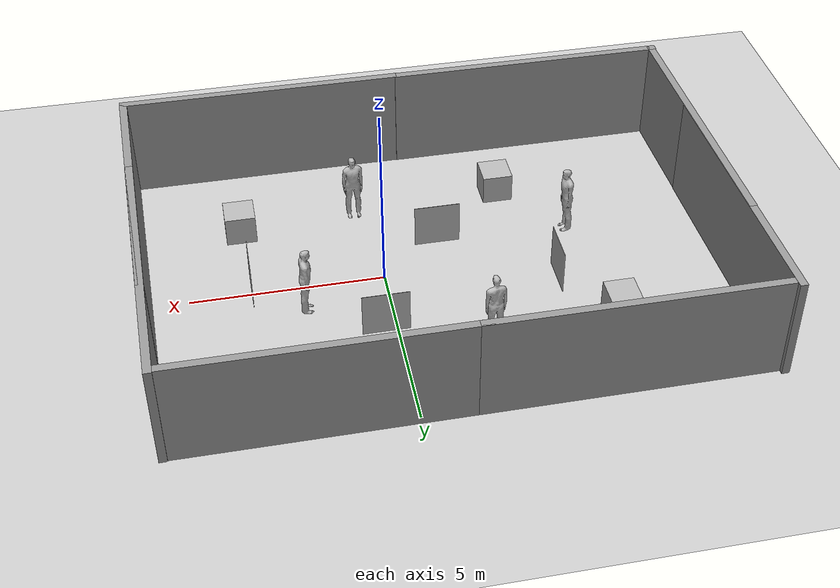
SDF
<sdf version="1.7">
 <world name="default">
  <model name="ground_plane">
   <static>1</static>
   <link name="link">
    <collision name="collision">
     <geometry><plane><normal>0 0 1</normal><size>100 100</size></plane></geometry>
     <surface><friction><ode><mu>100</mu><mu2>50</mu2></ode></friction></surface>
    </collision>
    <visual name="visual">
     <cast_shadows>0</cast_shadows>
     <geometry><plane><normal>0 0 1</normal><size>100 100</size></plane></geometry>
     <material>
      <script><uri>file://media/materials/scripts/gazebo.material</uri><name>Gazebo/Grey</name></script>
     </material>
    </visual>
   </link>
  </model>
  <light name="sun" type="directional">
   <pose>0 0 10 0 -0 0</pose>
   <diffuse>0.8 0.8 0.8 1</diffuse>
   <specular>0.2 0.2 0.2 1</specular>
   <attenuation>
    <range>1000</range>
    <constant>0.9</constant>
    <linear>0.01</linear>
    <quadratic>0.001</quadratic>
   </attenuation>
   <direction>-0.5 0.1 -0.9</direction>
   <spot><inner_angle>0</inner_angle><outer_angle>0</outer_angle><falloff>0</falloff></spot>
  </light>
  <scene><shadows>0</shadows><ambient>0.4 0.4 0.4 1</ambient><background>0.7 0.7 0.7 1</background></scene>
  <physics type="ode">
   <real_time_update_rate>1000</real_time_update_rate>
   <max_step_size>0.001</max_step_size>
   <real_time_factor>1</real_time_factor>
   <ode>
    <solver>
     <type>quick</type>
     <iters>150</iters>
     <precon_iters>0</precon_iters>
     <sor>1.4</sor>
     <use_dynamic_moi_rescaling>1</use_dynamic_moi_rescaling>
    </solver>
    <constraints>
     <cfm>1e-05</cfm>
     <erp>0.2</erp>
     <contact_max_correcting_vel>2000</contact_max_correcting_vel>
     <contact_surface_layer>0.01</contact_surface_layer>
    </constraints>
   </ode>
  </physics>
  <gravity>0 0 -9.8</gravity>
  <magnetic_field>6e-06 2.3e-05 -4.2e-05</magnetic_field>
  <atmosphere type="adiabatic"/>
  <audio><device>default</device></audio>
  <spherical_coordinates>
   <surface_model>EARTH_WGS84</surface_model>
   <latitude_deg>0</latitude_deg>
   <longitude_deg>0</longitude_deg>
   <elevation>0</elevation>
   <heading_deg>0</heading_deg>
  </spherical_coordinates>
  <model name="grey_wall">
   <static>1</static>
   <link name="link">
    <pose>0 0 1.4 0 -0 0</pose>
    <collision name="collision"><geometry><box><size>7.5 0.2 2.8</size></box></geometry></collision>
    <visual name="visual">
     <cast_shadows>0</cast_shadows>
     <geometry><box><size>7.5 0.2 2.8</size></box></geometry>
     <material>
      <script>
       <uri>model://grey_wall/materials/scripts</uri>
       <uri>model://grey_wall/materials/textures</uri>
       <name>vrc/grey_wall</name>
      </script>
     </material>
    </visual>
   </link>
   <pose>2.49343 -5.13275 0 0 -0 0</pose>
  </model>
  <model name="grey_wall_clone">
   <static>1</static>
   <link name="link">
    <pose>0 0 1.4 0 -0 0</pose>
    <collision name="collision"><geometry><box><size>7.5 0.2 2.8</size></box></geometry></collision>
    <visual name="visual">
     <cast_shadows>0</cast_shadows>
     <geometry><box><size>7.5 0.2 2.8</size></box></geometry>
     <material>
      <script>
       <uri>model://grey_wall/materials/scripts</uri>
       <uri>model://grey_wall/materials/textures</uri>
       <name>vrc/grey_wall</name>
      </script>
     </material>
    </visual>
   </link>
   <pose>-4.95983 -5.12102 0 0 -0 0</pose>
  </model>
  <model name="grey_wall_clone_0">
   <static>1</static>
   <link name="link">
    <pose>0 0 1.4 0 -0 0</pose>
    <collision name="collision"><geometry><box><size>7.5 0.2 2.8</size></box></geometry></collision>
    <visual name="visual">
     <cast_shadows>0</cast_shadows>
     <geometry><box><size>7.5 0.2 2.8</size></box></geometry>
     <material>
      <script>
       <uri>model://grey_wall/materials/scripts</uri>
       <uri>model://grey_wall/materials/textures</uri>
       <name>vrc/grey_wall</name>
      </script>
     </material>
    </visual>
   </link>
   <pose>2.08817 5.08764 0 0 -0 0</pose>
  </model>
  <model name="grey_wall_clone_1">
   <static>1</static>
   <link name="link">
    <pose>0 0 1.4 0 -0 0</pose>
    <collision name="collision"><geometry><box><size>7.5 0.2 2.8</size></box></geometry></collision>
    <visual name="visual">
     <cast_shadows>0</cast_shadows>
     <geometry><box><size>7.5 0.2 2.8</size></box></geometry>
     <material>
      <script>
       <uri>model://grey_wall/materials/scripts</uri>
       <uri>model://grey_wall/materials/textures</uri>
       <name>vrc/grey_wall</name>
      </script>
     </material>
    </visual>
   </link>
   <pose>-5.09148 5.08893 0 0 -0 0</pose>
  </model>
  <model name="grey_wall_clone_clone">
   <static>1</static>
   <link name="link">
    <pose>0 0 1.4 0 -0 0</pose>
    <collision name="collision"><geometry><box><size>7.5 0.2 2.8</size></box></geometry></collision>
    <visual name="visual">
     <cast_shadows>0</cast_shadows>
     <geometry><box><size>7.5 0.2 2.8</size></box></geometry>
     <material>
      <script>
       <uri>model://grey_wall/materials/scripts</uri>
       <uri>model://grey_wall/materials/textures</uri>
       <name>vrc/grey_wall</name>
      </script>
     </material>
    </visual>
   </link>
   <pose>-8.67692 -1.44255 0 0 -0 1.59489</pose>
  </model>
  <model name="grey_wall_clone_clone_clone">
   <static>1</static>
   <link name="link">
    <pose>0 0 1.4 0 -0 0</pose>
    <collision name="collision"><geometry><box><size>7.5 0.2 2.8</size></box></geometry></collision>
    <visual name="visual">
     <cast_shadows>0</cast_shadows>
     <geometry><box><size>7.5 0.2 2.8</size></box></geometry>
     <material>
      <script>
       <uri>model://grey_wall/materials/scripts</uri>
       <uri>model://grey_wall/materials/textures</uri>
       <name>vrc/grey_wall</name>
      </script>
     </material>
    </visual>
   </link>
   <pose>-8.7371 1.54771 0 0 -0 1.59489</pose>
  </model>
  <model name="grey_wall_clone_clone_clone_0">
   <static>1</static>
   <link name="link">
    <pose>0 0 1.4 0 -0 0</pose>
    <collision name="collision"><geometry><box><size>7.5 0.2 2.8</size></box></geometry></collision>
    <visual name="visual">
     <cast_shadows>0</cast_shadows>
     <geometry><box><size>7.5 0.2 2.8</size></box></geometry>
     <material>
      <script>
       <uri>model://grey_wall/materials/scripts</uri>
       <uri>model://grey_wall/materials/textures</uri>
       <name>vrc/grey_wall</name>
      </script>
     </material>
    </visual>
   </link>
   <pose>6.06434 -1.43467 0 0 -0 1.59489</pose>
  </model>
  <model name="grey_wall_clone_clone_clone_1">
   <static>1</static>
   <link name="link">
    <pose>0 0 1.4 0 -0 0</pose>
    <collision name="collision"><geometry><box><size>7.5 0.2 2.8</size></box></geometry></collision>
    <visual name="visual">
     <cast_shadows>0</cast_shadows>
     <geometry><box><size>7.5 0.2 2.8</size></box></geometry>
     <material>
      <script>
       <uri>model://grey_wall/materials/scripts</uri>
       <uri>model://grey_wall/materials/textures</uri>
       <name>vrc/grey_wall</name>
      </script>
     </material>
    </visual>
   </link>
   <pose>5.99791 1.46396 0 0 -0 1.59489</pose>
  </model>
  <model name="person_standing">
   <link name="link">
    <inertial>
     <pose>0 -0.1 0.95 0 -0 0</pose>
     <mass>80</mass>
     <inertia><ixx>24.88</ixx><ixy>0</ixy><ixz>0</ixz><iyy>25.73</iyy><iyz>0</iyz><izz>2.48</izz></inertia>
    </inertial>
    <collision name="bottom">
     <pose>0 -0.1 0.01 0 -0 0</pose>
     <geometry><box><size>0.5 0.35 0.02</size></box></geometry>
    </collision>
    <collision name="person">
     <pose>0 0 0.02 0.04 -0 0</pose>
     <geometry><mesh><uri>model://person_standing/meshes/standing.dae</uri></mesh></geometry>
    </collision>
    <visual name="visual">
     <pose>0 0 0.02 0.04 -0 0</pose>
     <geometry><mesh><uri>model://person_standing/meshes/standing.dae</uri></mesh></geometry>
    </visual>
   </link>
   <pose>2.19217 0.832121 -0 0 -1e-06 -1.62262</pose>
  </model>
  <model name="person_standing_clone">
   <link name="link">
    <inertial>
     <pose>0 -0.1 0.95 0 -0 0</pose>
     <mass>80</mass>
     <inertia><ixx>24.88</ixx><ixy>0</ixy><ixz>0</ixz><iyy>25.73</iyy><iyz>0</iyz><izz>2.48</izz></inertia>
    </inertial>
    <collision name="bottom">
     <pose>0 -0.1 0.01 0 -0 0</pose>
     <geometry><box><size>0.5 0.35 0.02</size></box></geometry>
    </collision>
    <collision name="person">
     <pose>0 0 0.02 0.04 -0 0</pose>
     <geometry><mesh><uri>model://person_standing/meshes/standing.dae</uri></mesh></geometry>
    </collision>
    <visual name="visual">
     <pose>0 0 0.02 0.04 -0 0</pose>
     <geometry><mesh><uri>model://person_standing/meshes/standing.dae</uri></mesh></geometry>
    </visual>
   </link>
   <pose>-5.19467 -1.09547 -0 0 -1e-06 1.584</pose>
  </model>
  <model name="person_standing_clone_0">
   <link name="link">
    <inertial>
     <pose>0 -0.1 0.95 0 -0 0</pose>
     <mass>80</mass>
     <inertia><ixx>24.88</ixx><ixy>0</ixy><ixz>0</ixz><iyy>25.73</iyy><iyz>0</iyz><izz>2.48</izz></inertia>
    </inertial>
    <collision name="bottom">
     <pose>0 -0.1 0.01 0 -0 0</pose>
     <geometry><box><size>0.5 0.35 0.02</size></box></geometry>
    </collision>
    <collision name="person">
     <pose>0 0 0.02 0.04 -0 0</pose>
     <geometry><mesh><uri>model://person_standing/meshes/standing.dae</uri></mesh></geometry>
    </collision>
    <visual name="visual">
     <pose>0 0 0.02 0.04 -0 0</pose>
     <geometry><mesh><uri>model://person_standing/meshes/standing.dae</uri></mesh></geometry>
    </visual>
   </link>
   <pose>-2.30415 2.78307 -0 0 1e-06 0.06202</pose>
  </model>
  <model name="person_standing_clone_1">
   <link name="link">
    <inertial>
     <pose>0 -0.1 0.95 0 -0 0</pose>
     <mass>80</mass>
     <inertia><ixx>24.88</ixx><ixy>0</ixy><ixz>0</ixz><iyy>25.73</iyy><iyz>0</iyz><izz>2.48</izz></inertia>
    </inertial>
    <collision name="bottom">
     <pose>0 -0.1 0.01 0 -0 0</pose>
     <geometry><box><size>0.5 0.35 0.02</size></box></geometry>
    </collision>
    <collision name="person">
     <pose>0 0 0.02 0.04 -0 0</pose>
     <geometry><mesh><uri>model://person_standing/meshes/standing.dae</uri></mesh></geometry>
    </collision>
    <visual name="visual">
     <pose>0 0 0.02 0.04 -0 0</pose>
     <geometry><mesh><uri>model://person_standing/meshes/standing.dae</uri></mesh></geometry>
    </visual>
   </link>
   <pose>0.378166 -2.81674 0 0 -1e-06 -3.12872</pose>
  </model>
  <model name="number2">
   <pose>-3.5995 -2.97813 0.4 0 -0 0</pose>
   <static>1</static>
   <link name="link">
    <visual name="visual">
     <geometry><mesh><uri>model://number1/meshes/number.dae</uri></mesh></geometry>
     <material>
      <script>
       <uri>model://number2/materials/scripts</uri>
       <uri>model://number2/materials/textures</uri>
       <name>Number/Two</name>
      </script>
     </material>
    </visual>
   </link>
  </model>
  <model name="number1">
   <pose>3.47363 -2.52126 0.4 0 -0 0</pose>
   <static>1</static>
   <link name="link">
    <visual name="visual">
     <geometry><mesh><uri>model://number1/meshes/number.dae</uri></mesh></geometry>
     <material>
      <script>
       <uri>model://number1/materials/scripts</uri>
       <uri>model://number1/materials/textures</uri>
       <name>Number/One</name>
      </script>
     </material>
    </visual>
   </link>
  </model>
  <model name="number3">
   <pose>-5.57721 2.51639 0.4 0 -0 0</pose>
   <static>1</static>
   <link name="link">
    <visual name="visual">
     <geometry><mesh><uri>model://number1/meshes/number.dae</uri></mesh></geometry>
     <material>
      <script>
       <uri>model://number3/materials/scripts</uri>
       <uri>model://number3/materials/textures</uri>
       <name>Number/Three</name>
      </script>
     </material>
    </visual>
   </link>
  </model>
  <model name="nist_maze_wall_120">
   <static>1</static>
   <link name="nist_maze_wall_120_link">
    <collision name="collision">
     <geometry>
      <mesh><uri>model://nist_maze_wall_120/meshes/nist_maze_wall_120.dae</uri><scale>1 1 1</scale></mesh>
     </geometry>
    </collision>
    <visual name="visual">
     <geometry>
      <mesh><uri>model://nist_maze_wall_120/meshes/nist_maze_wall_120.dae</uri><scale>1 1 1</scale></mesh>
     </geometry>
    </visual>
   </link>
   <pose>0.276991 1.37628 0 0 -0 0</pose>
  </model>
  <model name="nist_maze_wall_120_clone">
   <static>1</static>
   <link name="nist_maze_wall_120_link">
    <collision name="collision">
     <geometry>
      <mesh><uri>model://nist_maze_wall_120/meshes/nist_maze_wall_120.dae</uri><scale>1 1 1</scale></mesh>
     </geometry>
    </collision>
    <visual name="visual">
     <geometry>
      <mesh><uri>model://nist_maze_wall_120/meshes/nist_maze_wall_120.dae</uri><scale>1 1 1</scale></mesh>
     </geometry>
    </visual>
   </link>
   <pose>-1.62098 -1.76915 0 0 -0 0</pose>
  </model>
  <model name="nist_maze_wall_120_clone_0">
   <static>1</static>
   <link name="nist_maze_wall_120_link">
    <collision name="collision">
     <geometry>
      <mesh><uri>model://nist_maze_wall_120/meshes/nist_maze_wall_120.dae</uri><scale>1 1 1</scale></mesh>
     </geometry>
    </collision>
    <visual name="visual">
     <geometry>
      <mesh><uri>model://nist_maze_wall_120/meshes/nist_maze_wall_120.dae</uri><scale>1 1 1</scale></mesh>
     </geometry>
    </visual>
   </link>
   <pose>-3.7781 0.829366 0 0 -0 1.56608</pose>
  </model>
  <model name="nist_maze_wall_120_clone_0_clone">
   <static>1</static>
   <link name="nist_maze_wall_120_link">
    <collision name="collision">
     <geometry>
      <mesh><uri>model://nist_maze_wall_120/meshes/nist_maze_wall_120.dae</uri><scale>1 1 1</scale></mesh>
     </geometry>
    </collision>
    <visual name="visual">
     <geometry>
      <mesh><uri>model://nist_maze_wall_120/meshes/nist_maze_wall_120.dae</uri><scale>1 1 1</scale></mesh>
     </geometry>
    </visual>
   </link>
   <pose>4.0133 -0.136355 0 0 -0 1.56608</pose>
  </model>
 </world>
</sdf>
